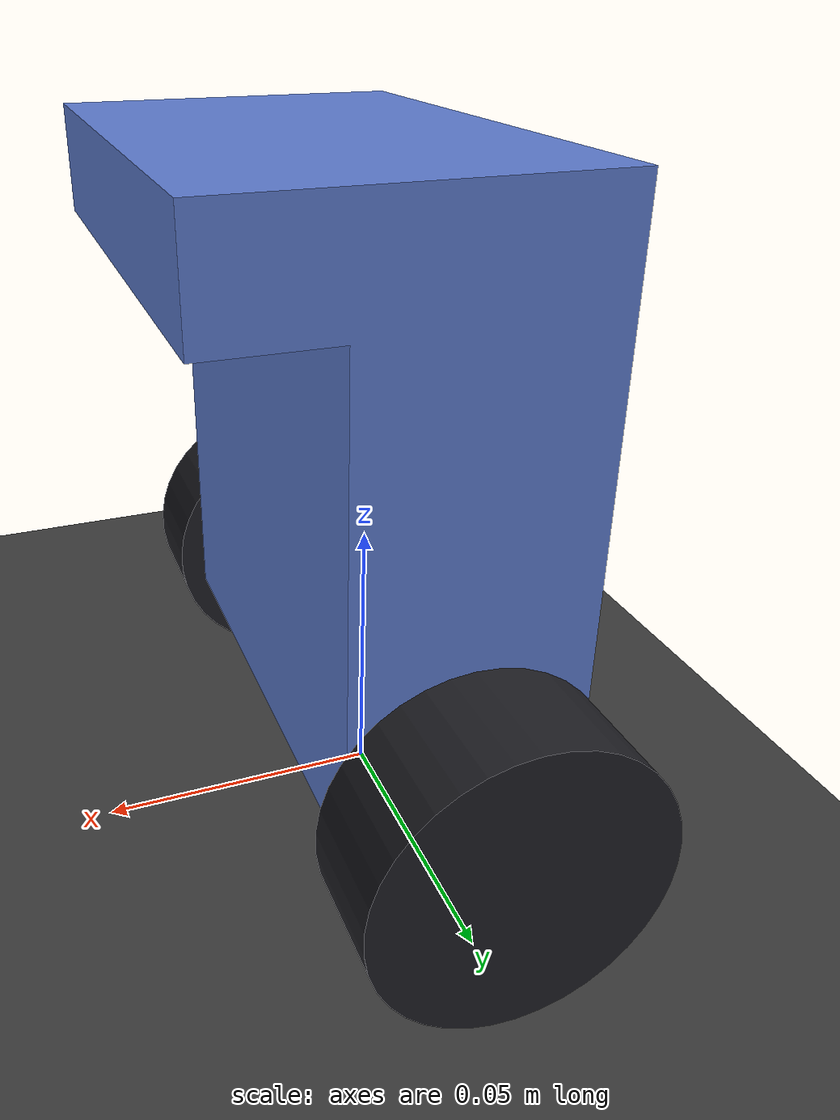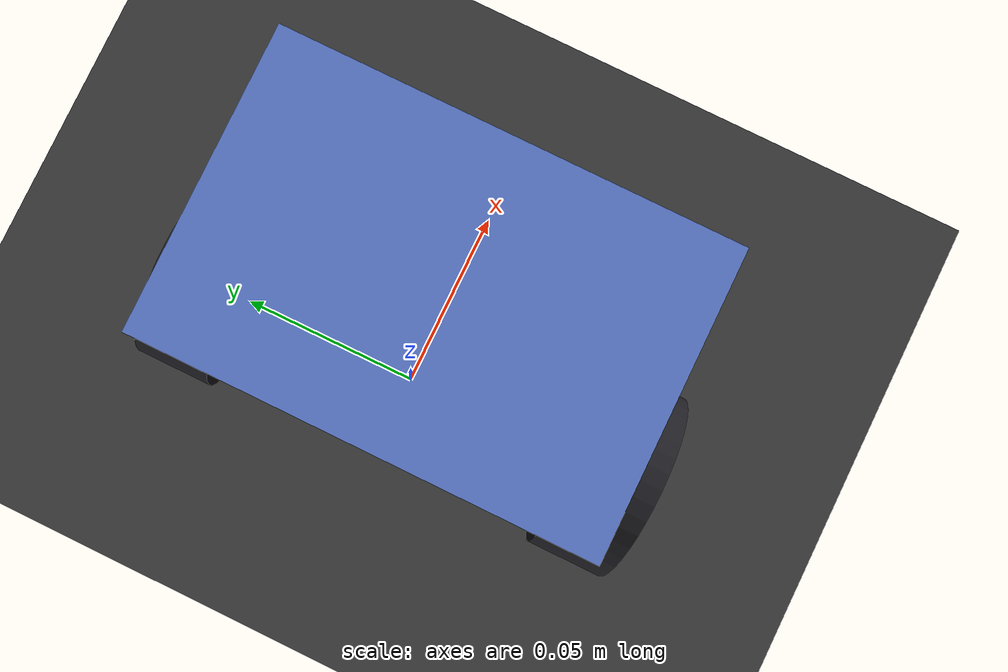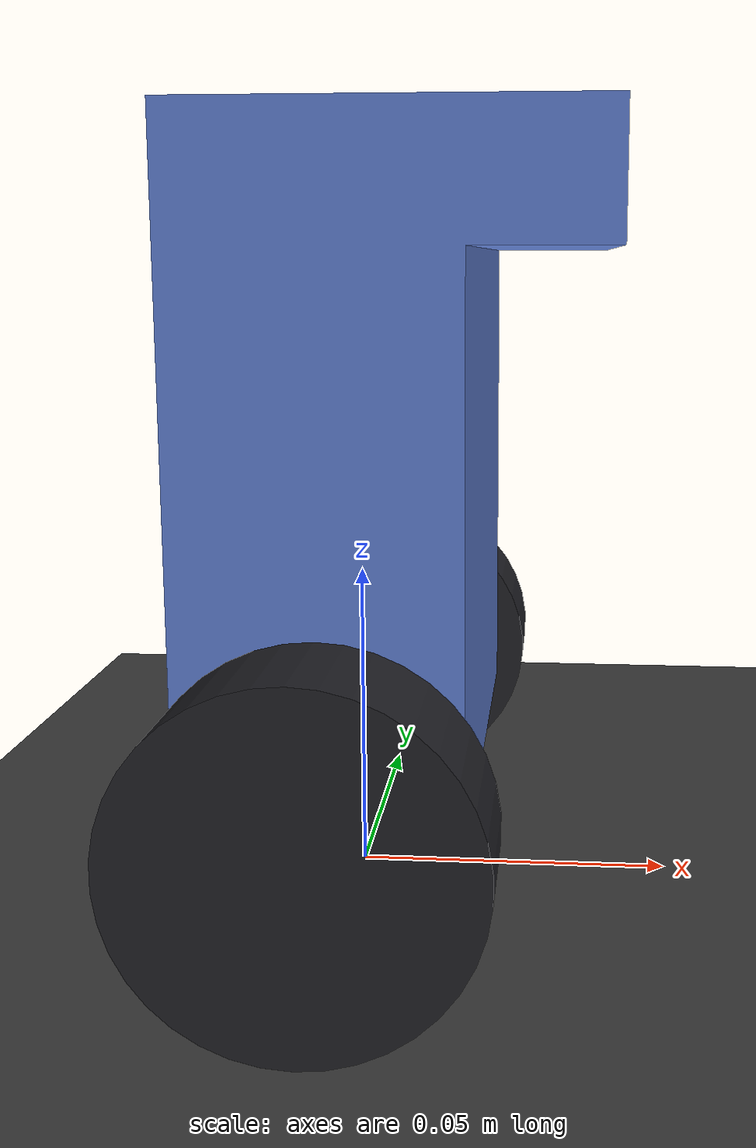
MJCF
<?xml version="1.0" encoding="utf-8"?>
<mujoco model="balancing_robot">
  <compiler angle="radian" meshdir="../meshes" autolimits="true"/>
  <option timestep="0.002" integrator="RK4" gravity="0 0 -9.81">
    <flag contact="enable"/>
  </option>

  <visual>
    <headlight ambient="0.35 0.35 0.35" diffuse="0.65 0.65 0.65" specular="0.2 0.2 0.2"/>
    <rgba haze="0.15 0.25 0.35 1"/>
    <global azimuth="135" elevation="-18"/>
  </visual>

  <default>
    <joint damping="0.001" armature="1e-5"/>
    <geom condim="3" friction="1.0 0.005 0.0001" solref="0.004 1"/>
    <motor ctrllimited="true" ctrlrange="-1 1"/>
  </default>

  <asset>
    <mesh name="base_mesh" file="base_link.STL"/>
    <mesh name="wheel_right_mesh" file="wheel_R.STL"/>
    <mesh name="wheel_left_mesh" file="wheel_L.STL"/>
    <texture name="ground_texture" type="2d" builtin="checker"
             rgb1="0.18 0.18 0.18" rgb2="0.28 0.28 0.28"
             width="512" height="512"/>
    <material name="ground_material" texture="ground_texture"
              texrepeat="2 2" texuniform="true" reflectance="0.08"/>
  </asset>

  <worldbody>
    <light pos="0 -1 2" dir="0 0 -1" directional="true"/>
    <geom name="floor" type="plane" size="0 0 0.05" material="ground_material"/>
    <camera name="side" pos="0 -0.6 0.10" xyaxes="1 0 0 0 0 1"/>

    <!--
      원본 CAD 좌표계: X=전진, Y=차체 높이, Z=바퀴 축.
      -90 deg X 회전으로 MuJoCo의 X=전진, Y=좌우, Z=높이에 맞춘다.
    -->
    <body name="base_link" pos="0 0 0.02" quat="0.70710678 -0.70710678 0 0">
      <freejoint name="base_free_joint"/>
      <!--
        제어 연습용으로 전후 무게중심 X와 교차 관성을 0으로 대칭화했다.
        CAD 측정값 X=0.002528 m를 쓰면 정지 평형 자세가 약 2.7 deg 기울어진다.
      -->
      <inertial pos="0 -0.053438 0" mass="0.39313"
                diaginertia="0.00061679 0.00034177 0.00042783"/>
      <geom name="base_visual" type="mesh" mesh="base_mesh"
            contype="0" conaffinity="0" group="1"
            rgba="0.36 0.48 0.80 1"/>
      <!-- 단순 충돌 형상은 삼각 메시보다 접촉이 안정적이고 계산량이 적다. -->
      <geom name="base_collision" type="box" pos="0.01 -0.05 0"
            size="0.03 0.05 0.045" rgba="0.36 0.48 0.80 0"/>
      <site name="imu_site" pos="0 -0.05 0" size="0.003" rgba="1 0 0 1"/>

      <body name="wheel_R" pos="0 -0.005 -0.045" quat="0 0 0 1">
        <joint name="right_wheel_joint" type="hinge" axis="0 0 1"/>
        <inertial pos="0 0 -0.01" mass="0.03927"
                  diaginertia="0.0000074449 0.0000074449 0.000012272"/>
        <geom name="right_wheel_visual" type="mesh" mesh="wheel_right_mesh"
              contype="0" conaffinity="0" group="1" rgba="0.12 0.12 0.14 1"/>
        <geom name="right_wheel_collision" type="cylinder" pos="0 0 -0.01"
              size="0.025 0.01" rgba="0.12 0.12 0.14 0"/>
      </body>

      <body name="wheel_L" pos="0 -0.005 0.045" quat="0 0 0 1">
        <joint name="left_wheel_joint" type="hinge" axis="0 0 1"/>
        <inertial pos="0 0 0.01" mass="0.03927"
                  diaginertia="0.0000074449 0.0000074449 0.000012272"/>
        <geom name="left_wheel_visual" type="mesh" mesh="wheel_left_mesh"
              contype="0" conaffinity="0" group="1" rgba="0.12 0.12 0.14 1"/>
        <geom name="left_wheel_collision" type="cylinder" pos="0 0 0.01"
              size="0.025 0.01" rgba="0.12 0.12 0.14 0"/>
      </body>
    </body>
  </worldbody>

  <!-- data.ctrl 값이 gear=1을 거쳐 각 관절 토크[N·m]로 직접 적용된다. -->
  <actuator>
    <motor name="right_wheel_torque" joint="right_wheel_joint" gear="1"/>
    <motor name="left_wheel_torque" joint="left_wheel_joint" gear="1"/>
  </actuator>

  <sensor>
    <jointpos name="right_wheel_position" joint="right_wheel_joint"/>
    <jointpos name="left_wheel_position" joint="left_wheel_joint"/>
    <jointvel name="right_wheel_velocity" joint="right_wheel_joint"/>
    <jointvel name="left_wheel_velocity" joint="left_wheel_joint"/>
    <actuatorfrc name="right_wheel_applied_torque" actuator="right_wheel_torque"/>
    <actuatorfrc name="left_wheel_applied_torque" actuator="left_wheel_torque"/>
    <framequat name="base_orientation" objtype="body" objname="base_link"/>
    <gyro name="base_angular_velocity" site="imu_site"/>
    <accelerometer name="base_acceleration" site="imu_site"/>
  </sensor>
</mujoco>
